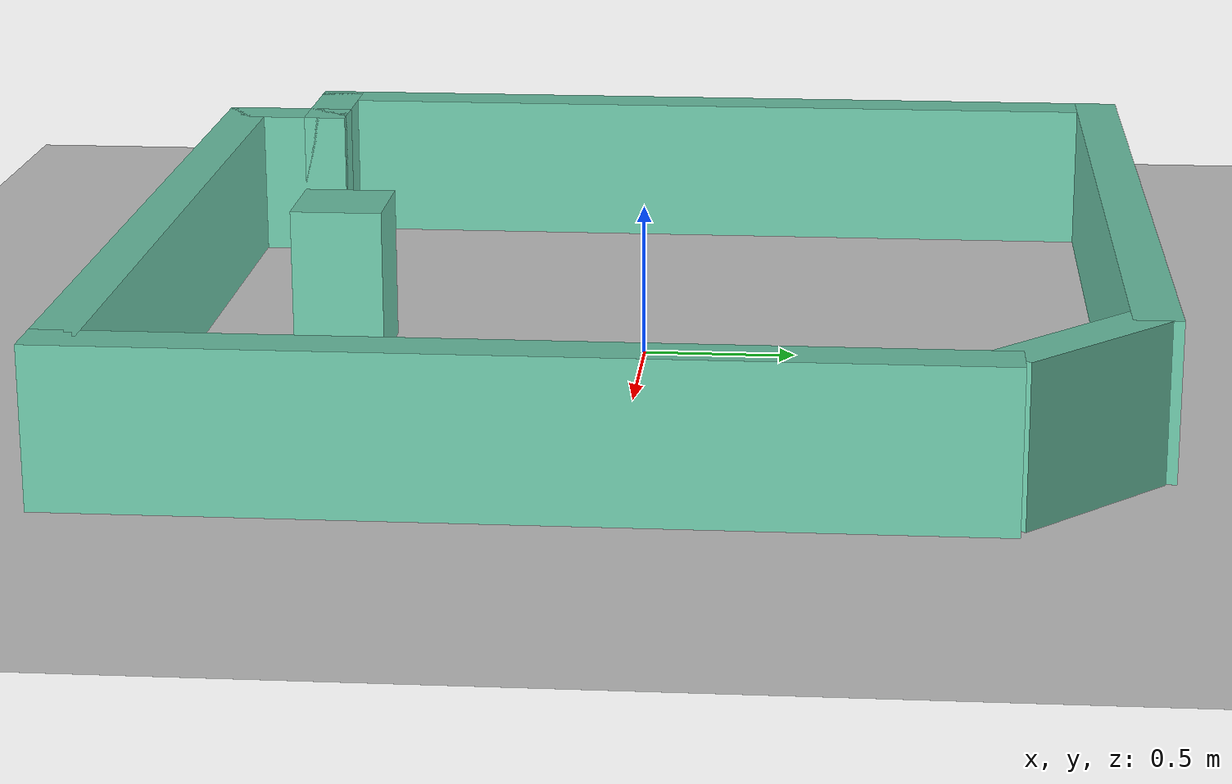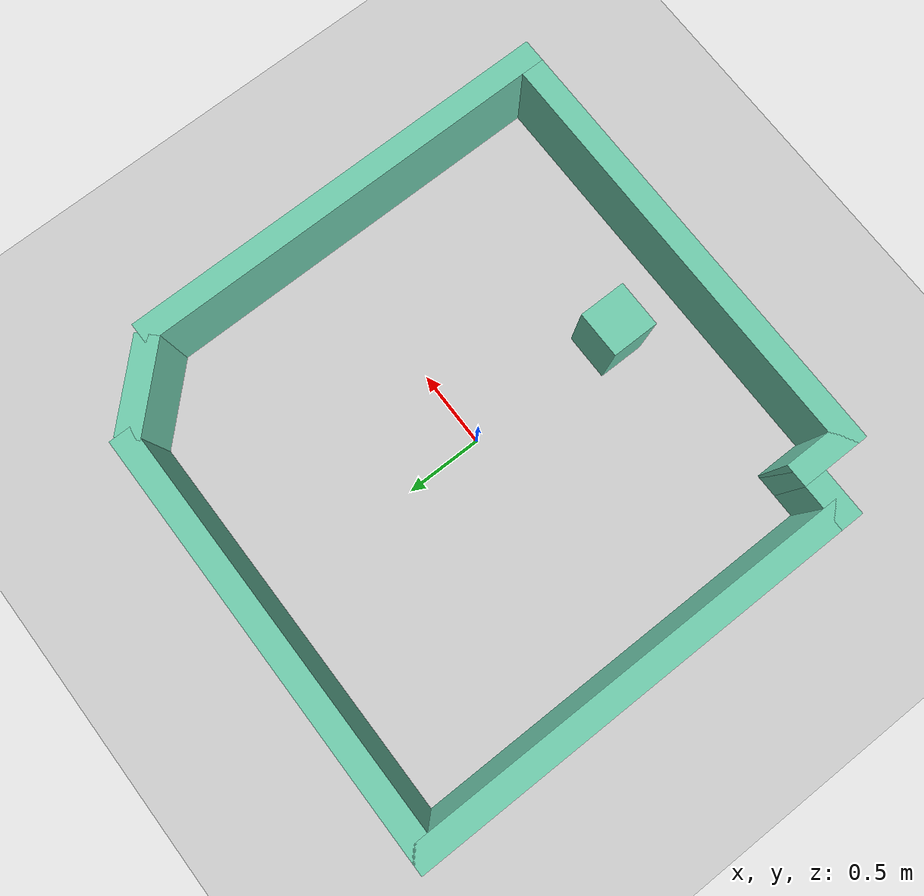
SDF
<sdf version="1.6">
 <world name="default">
  <light name="sun" type="directional">
   <pose>0 0 10 0 -0 0</pose>
   <diffuse>0.8 0.8 0.8 1</diffuse>
   <specular>0.2 0.2 0.2 1</specular>
   <attenuation>
    <range>1000</range>
    <constant>0.9</constant>
    <linear>0.01</linear>
    <quadratic>0.001</quadratic>
   </attenuation>
   <direction>-0.5 0.1 -0.9</direction>
  </light>
  <model name="ground_plane">
   <static>1</static>
   <link name="link">
    <collision name="collision">
     <geometry><plane><normal>0 0 1</normal><size>100 100</size></plane></geometry>
     <surface><friction><ode><mu>100</mu><mu2>50</mu2></ode></friction></surface>
    </collision>
    <visual name="visual">
     <cast_shadows>0</cast_shadows>
     <geometry><plane><normal>0 0 1</normal><size>100 100</size></plane></geometry>
     <material>
      <script><uri>file://media/materials/scripts/gazebo.material</uri><name>Gazebo/Grey</name></script>
     </material>
    </visual>
   </link>
  </model>
  <gravity>0 0 -9.8</gravity>
  <magnetic_field>6e-06 2.3e-05 -4.2e-05</magnetic_field>
  <atmosphere type="adiabatic"/>
  <physics name="default_physics" default="0" type="ode">
   <max_step_size>0.001</max_step_size>
   <real_time_factor>1</real_time_factor>
   <real_time_update_rate>1000</real_time_update_rate>
  </physics>
  <scene><ambient>0.4 0.4 0.4 1</ambient><background>0.7 0.7 0.7 1</background><shadows>1</shadows></scene>
  <spherical_coordinates>
   <surface_model>EARTH_WGS84</surface_model>
   <latitude_deg>0</latitude_deg>
   <longitude_deg>0</longitude_deg>
   <elevation>0</elevation>
   <heading_deg>0</heading_deg>
  </spherical_coordinates>
  <model name="dog_house">
   <link name="Wall_14">
    <collision name="Wall_14_Collision">
     <geometry><box><size>3 0.15 0.5</size></box></geometry>
     <pose>0 0 0.25 0 -0 0</pose>
    </collision>
    <visual name="Wall_14_Visual">
     <pose>0 0 0.25 0 -0 0</pose>
     <geometry><box><size>3 0.15 0.5</size></box></geometry>
     <material>
      <script><uri>file://media/materials/scripts/gazebo.material</uri><name>Gazebo/Grey</name></script>
      <ambient>0.435294 0.796078 0.67451 1</ambient>
     </material>
    </visual>
    <pose>-1.575 0.15 0 0 0 -1.5708</pose>
   </link>
   <link name="Wall_16">
    <collision name="Wall_16_Collision">
     <geometry><box><size>0.45 0.15 0.5</size></box></geometry>
     <pose>0 0 0.25 0 -0 0</pose>
    </collision>
    <visual name="Wall_16_Visual">
     <pose>0 0 0.25 0 -0 0</pose>
     <geometry><box><size>0.45 0.15 0.5</size></box></geometry>
     <material>
      <script><uri>file://media/materials/scripts/gazebo.material</uri><name>Gazebo/Grey</name></script>
      <ambient>0.435294 0.796078 0.67451 1</ambient>
     </material>
    </visual>
    <pose>-1.425 -1.275 0 0 -0 0</pose>
   </link>
   <link name="Wall_22">
    <collision name="Wall_22_Collision">
     <geometry><box><size>0.45 0.15 0.5</size></box></geometry>
     <pose>0 0 0.25 0 -0 0</pose>
    </collision>
    <visual name="Wall_22_Visual">
     <pose>0 0 0.25 0 -0 0</pose>
     <geometry><box><size>0.45 0.15 0.5</size></box></geometry>
     <material>
      <script><uri>file://media/materials/scripts/gazebo.material</uri><name>Gazebo/Grey</name></script>
      <ambient>0.435294 0.796078 0.67451 1</ambient>
     </material>
    </visual>
    <pose>-1.275 -1.425 0 0 0 -1.5708</pose>
   </link>
   <link name="Wall_24">
    <collision name="Wall_24_Collision">
     <geometry><box><size>3 0.15 0.5</size></box></geometry>
     <pose>0 0 0.25 0 -0 0</pose>
    </collision>
    <visual name="Wall_24_Visual">
     <pose>0 0 0.25 0 -0 0</pose>
     <geometry><box><size>3 0.15 0.5</size></box></geometry>
     <material>
      <script><uri>file://media/materials/scripts/gazebo.material</uri><name>Gazebo/Grey</name></script>
      <ambient>0.435294 0.796078 0.67451 1</ambient>
     </material>
    </visual>
    <pose>0.15 -1.575 0 0 -0 0</pose>
   </link>
   <link name="Wall_27">
    <collision name="Wall_27_Collision">
     <geometry><box><size>2.825 0.15 0.5</size></box></geometry>
     <pose>0 0 0.25 0 -0 0</pose>
    </collision>
    <visual name="Wall_27_Visual">
     <pose>0 0 0.25 0 -0 0</pose>
     <geometry><box><size>2.825 0.15 0.5</size></box></geometry>
     <material>
      <script><uri>file://media/materials/scripts/gazebo.material</uri><name>Gazebo/Grey</name></script>
      <ambient>0.435294 0.796078 0.67451 1</ambient>
     </material>
    </visual>
    <pose>1.575 -0.2375 0 0 -0 1.5708</pose>
   </link>
   <link name="Wall_29">
    <collision name="Wall_29_Collision">
     <geometry><box><size>2.825 0.15 0.5</size></box></geometry>
     <pose>0 0 0.25 0 -0 0</pose>
    </collision>
    <visual name="Wall_29_Visual">
     <pose>0 0 0.25 0 -0 0</pose>
     <geometry><box><size>2.825 0.15 0.5</size></box></geometry>
     <material>
      <script><uri>file://media/materials/scripts/gazebo.material</uri><name>Gazebo/Grey</name></script>
      <ambient>0.435294 0.796078 0.67451 1</ambient>
     </material>
    </visual>
    <pose>-0.2375 1.575 0 0 -0 0</pose>
   </link>
   <link name="Wall_31">
    <collision name="Wall_31_Collision">
     <geometry><box><size>0.6 0.15 0.5</size></box></geometry>
     <pose>0 0 0.25 0 -0 0</pose>
    </collision>
    <visual name="Wall_31_Visual">
     <pose>0 0 0.25 0 -0 0</pose>
     <geometry><box><size>0.6 0.15 0.5</size></box></geometry>
     <material>
      <script><uri>file://media/materials/scripts/gazebo.material</uri><name>Gazebo/Grey</name></script>
      <ambient>0.435294 0.796078 0.67451 1</ambient>
     </material>
    </visual>
    <pose>1.34 1.3505 0 0 0 -0.786968</pose>
   </link>
   <static>1</static>
  </model>
  <model name="Untitled">
   <pose>0 -1 0 0 -0 0</pose>
   <link name="Wall_35">
    <collision name="Wall_35_Collision">
     <geometry><box><size>0.3 0.3 0.5</size></box></geometry>
     <pose>0 0 0.25 0 -0 0</pose>
    </collision>
    <visual name="Wall_35_Visual">
     <pose>0 0 0.25 0 -0 0</pose>
     <geometry><box><size>0.3 0.3 0.5</size></box></geometry>
     <material>
      <script><uri>file://media/materials/scripts/gazebo.material</uri><name>Gazebo/Grey</name></script>
      <ambient>0.435294 0.796078 0.67451 1</ambient>
     </material>
    </visual>
   </link>
   <static>1</static>
  </model>
 </world>
</sdf>
